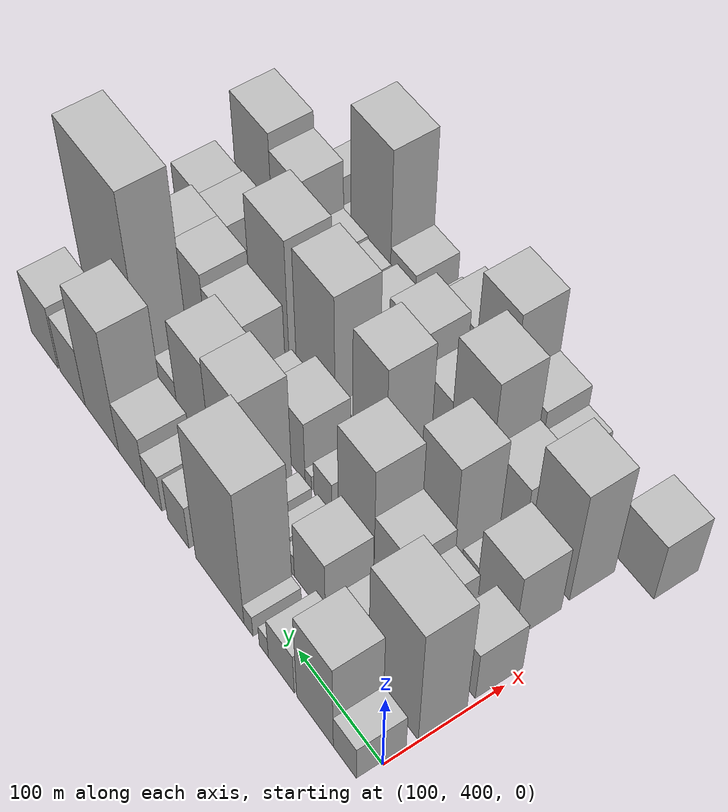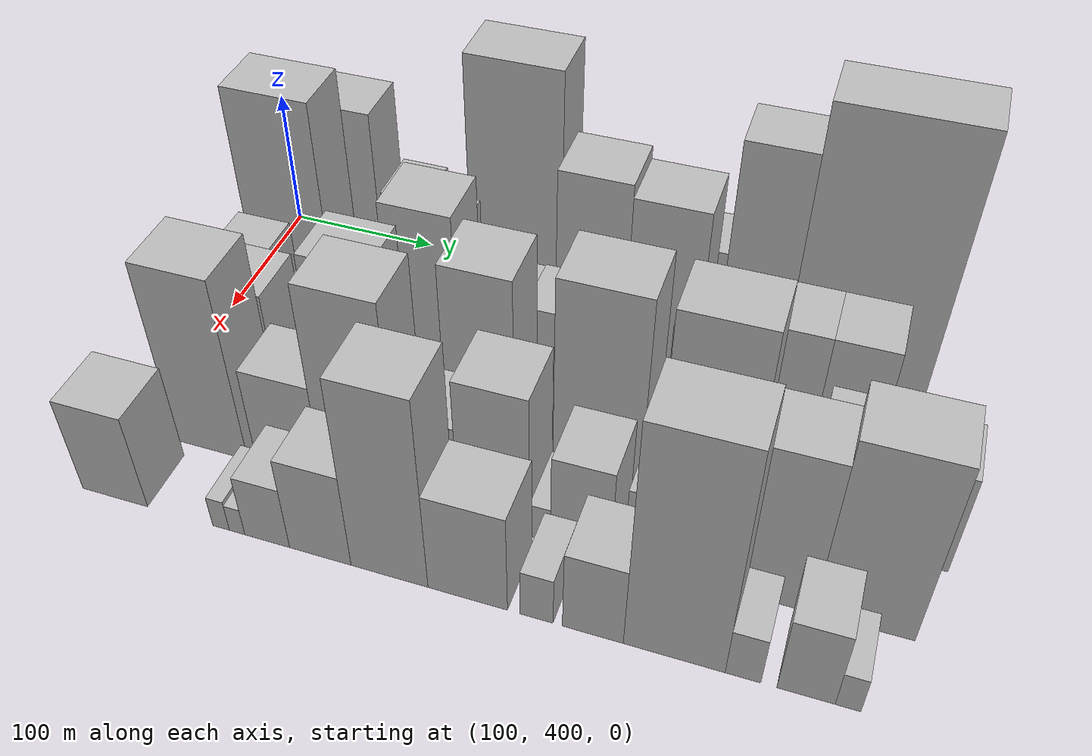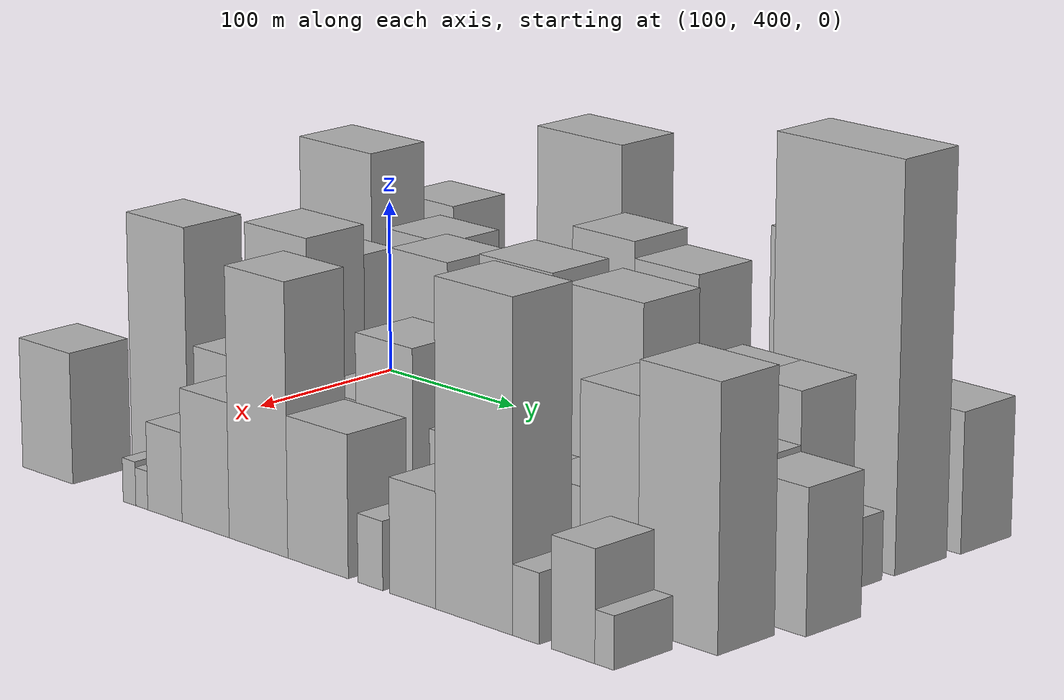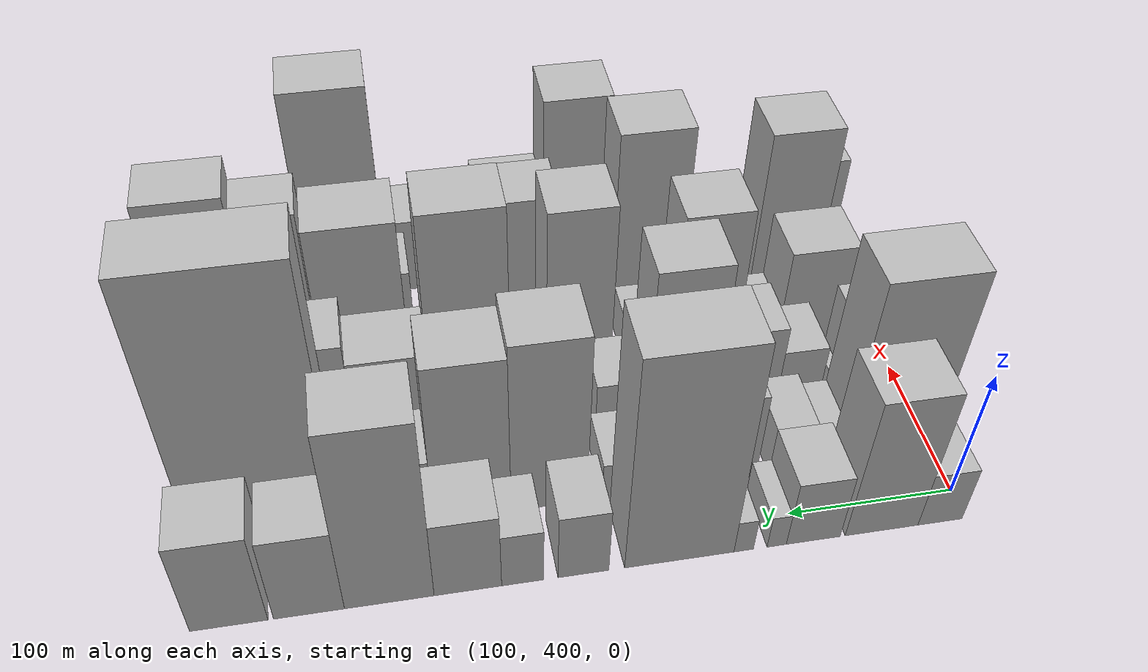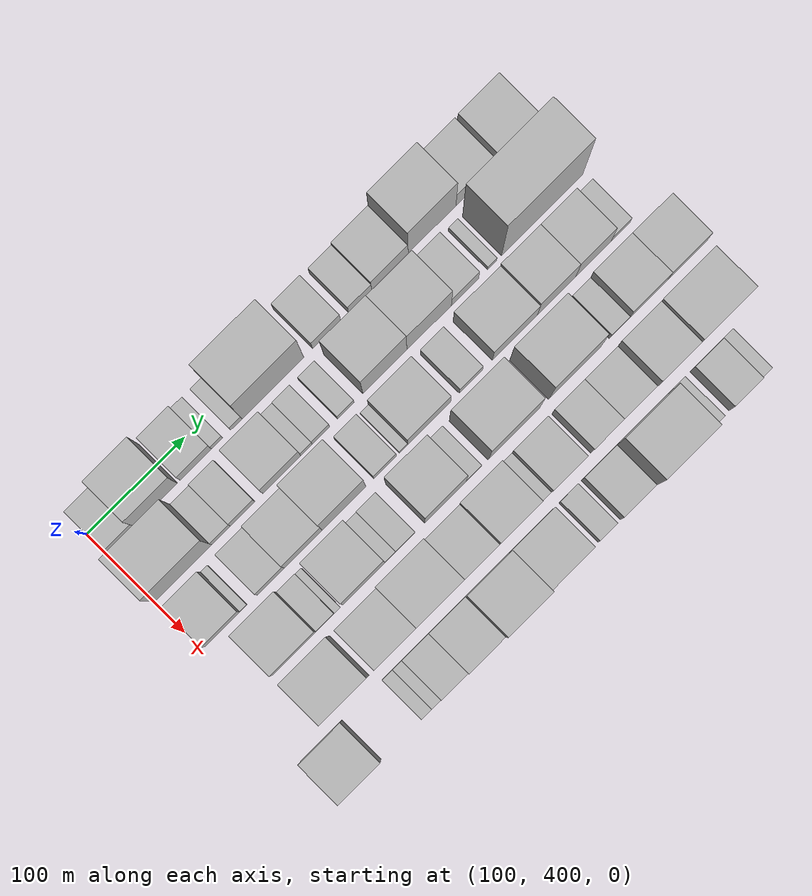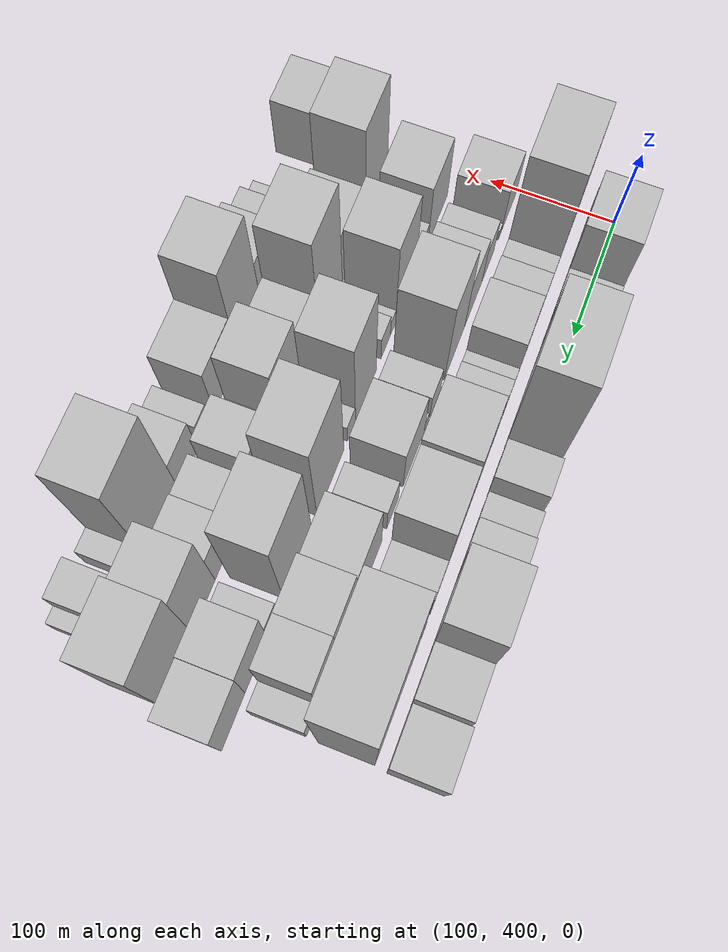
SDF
<sdf version="1.6">
 <world name="default">
  <model name="building_38">
   <static>1</static>
   <pose>100.0000 415.3462 0 0.000000 0.000000 0.000000</pose>
   <link name="link">
    <pose>0 0 22.50 0 0 0</pose>
    <collision name="collision"><geometry><box><size>40.0000 26.8681 45.0000</size></box></geometry></collision>
    <visual name="visual">
     <cast_shadows>0</cast_shadows>
     <geometry><box><size>40.0000 26.8681 45.0000</size></box></geometry>
     <material>
      <script>
       <uri>model://HANNAS_wall/materials/scripts</uri>
       <uri>model://HANNAS_wall/materials/textures</uri>
       <name>vrc/HANNAS_wall</name>
      </script>
     </material>
    </visual>
   </link>
  </model>
  <model name="building_39">
   <static>1</static>
   <pose>100.0000 450.6883 0 0.000000 0.000000 0.000000</pose>
   <link name="link">
    <pose>0 0 57.00 0 0 0</pose>
    <collision name="collision"><geometry><box><size>40.0000 43.8163 114.0000</size></box></geometry></collision>
    <visual name="visual">
     <cast_shadows>0</cast_shadows>
     <geometry><box><size>40.0000 43.8163 114.0000</size></box></geometry>
     <material>
      <script>
       <uri>model://HANNAS_wall/materials/scripts</uri>
       <uri>model://HANNAS_wall/materials/textures</uri>
       <name>vrc/HANNAS_wall</name>
      </script>
     </material>
    </visual>
   </link>
  </model>
  <model name="building_40">
   <static>1</static>
   <pose>100.0000 491.5645 0 0.000000 0.000000 0.000000</pose>
   <link name="link">
    <pose>0 0 27.00 0 0 0</pose>
    <collision name="collision"><geometry><box><size>40.0000 31.9362 54.0000</size></box></geometry></collision>
    <visual name="visual">
     <cast_shadows>0</cast_shadows>
     <geometry><box><size>40.0000 31.9362 54.0000</size></box></geometry>
     <material>
      <script>
       <uri>model://HANNAS_wall/materials/scripts</uri>
       <uri>model://HANNAS_wall/materials/textures</uri>
       <name>vrc/HANNAS_wall</name>
      </script>
     </material>
    </visual>
   </link>
  </model>
  <model name="building_41">
   <static>1</static>
   <pose>100.0000 513.2222 0 0.000000 0.000000 0.000000</pose>
   <link name="link">
    <pose>0 0 13.50 0 0 0</pose>
    <collision name="collision"><geometry><box><size>40.0000 11.3791 27.0000</size></box></geometry></collision>
    <visual name="visual">
     <cast_shadows>0</cast_shadows>
     <geometry><box><size>40.0000 11.3791 27.0000</size></box></geometry>
     <material>
      <script>
       <uri>model://HANNAS_wall/materials/scripts</uri>
       <uri>model://HANNAS_wall/materials/textures</uri>
       <name>vrc/HANNAS_wall</name>
      </script>
     </material>
    </visual>
   </link>
  </model>
  <model name="building_42">
   <static>1</static>
   <pose>100.0000 532.6210 0 0.000000 0.000000 0.000000</pose>
   <link name="link">
    <pose>0 0 13.50 0 0 0</pose>
    <collision name="collision"><geometry><box><size>40.0000 11.4184 27.0000</size></box></geometry></collision>
    <visual name="visual">
     <cast_shadows>0</cast_shadows>
     <geometry><box><size>40.0000 11.4184 27.0000</size></box></geometry>
     <material>
      <script>
       <uri>model://HANNAS_wall/materials/scripts</uri>
       <uri>model://HANNAS_wall/materials/textures</uri>
       <name>vrc/HANNAS_wall</name>
      </script>
     </material>
    </visual>
   </link>
  </model>
  <model name="building_43">
   <static>1</static>
   <pose>100.0000 569.9449 0 0.000000 0.000000 0.000000</pose>
   <link name="link">
    <pose>0 0 85.50 0 0 0</pose>
    <collision name="collision"><geometry><box><size>40.0000 63.2294 171.0000</size></box></geometry></collision>
    <visual name="visual">
     <cast_shadows>0</cast_shadows>
     <geometry><box><size>40.0000 63.2294 171.0000</size></box></geometry>
     <material>
      <script>
       <uri>model://HANNAS_wall/materials/scripts</uri>
       <uri>model://HANNAS_wall/materials/textures</uri>
       <name>vrc/HANNAS_wall</name>
      </script>
     </material>
    </visual>
   </link>
  </model>
  <model name="building_44">
   <static>1</static>
   <pose>100.0000 624.9713 0 0.000000 0.000000 0.000000</pose>
   <link name="link">
    <pose>0 0 27.00 0 0 0</pose>
    <collision name="collision"><geometry><box><size>40.0000 28.8236 54.0000</size></box></geometry></collision>
    <visual name="visual">
     <cast_shadows>0</cast_shadows>
     <geometry><box><size>40.0000 28.8236 54.0000</size></box></geometry>
     <material>
      <script>
       <uri>model://HANNAS_wall/materials/scripts</uri>
       <uri>model://HANNAS_wall/materials/textures</uri>
       <name>vrc/HANNAS_wall</name>
      </script>
     </material>
    </visual>
   </link>
  </model>
  <model name="building_45">
   <static>1</static>
   <pose>100.0000 659.1716 0 0.000000 0.000000 0.000000</pose>
   <link name="link">
    <pose>0 0 22.50 0 0 0</pose>
    <collision name="collision"><geometry><box><size>40.0000 23.5769 45.0000</size></box></geometry></collision>
    <visual name="visual">
     <cast_shadows>0</cast_shadows>
     <geometry><box><size>40.0000 23.5769 45.0000</size></box></geometry>
     <material>
      <script>
       <uri>model://HANNAS_wall/materials/scripts</uri>
       <uri>model://HANNAS_wall/materials/textures</uri>
       <name>vrc/HANNAS_wall</name>
      </script>
     </material>
    </visual>
   </link>
  </model>
  <model name="building_46">
   <static>1</static>
   <pose>100.0000 689.6804 0 0.000000 0.000000 0.000000</pose>
   <link name="link">
    <pose>0 0 31.50 0 0 0</pose>
    <collision name="collision"><geometry><box><size>40.0000 37.4409 63.0000</size></box></geometry></collision>
    <visual name="visual">
     <cast_shadows>0</cast_shadows>
     <geometry><box><size>40.0000 37.4409 63.0000</size></box></geometry>
     <material>
      <script>
       <uri>model://HANNAS_wall/materials/scripts</uri>
       <uri>model://HANNAS_wall/materials/textures</uri>
       <name>vrc/HANNAS_wall</name>
      </script>
     </material>
    </visual>
   </link>
  </model>
  <model name="building_47">
   <static>1</static>
   <pose>100.0000 732.8744 0 0.000000 0.000000 0.000000</pose>
   <link name="link">
    <pose>0 0 73.50 0 0 0</pose>
    <collision name="collision"><geometry><box><size>40.0000 48.9471 147.0000</size></box></geometry></collision>
    <visual name="visual">
     <cast_shadows>0</cast_shadows>
     <geometry><box><size>40.0000 48.9471 147.0000</size></box></geometry>
     <material>
      <script>
       <uri>model://HANNAS_wall/materials/scripts</uri>
       <uri>model://HANNAS_wall/materials/textures</uri>
       <name>vrc/HANNAS_wall</name>
      </script>
     </material>
    </visual>
   </link>
  </model>
  <model name="building_48">
   <static>1</static>
   <pose>100.0000 776.4161 0 0.000000 0.000000 0.000000</pose>
   <link name="link">
    <pose>0 0 34.50 0 0 0</pose>
    <collision name="collision"><geometry><box><size>40.0000 38.1363 69.0000</size></box></geometry></collision>
    <visual name="visual">
     <cast_shadows>0</cast_shadows>
     <geometry><box><size>40.0000 38.1363 69.0000</size></box></geometry>
     <material>
      <script>
       <uri>model://HANNAS_wall/materials/scripts</uri>
       <uri>model://HANNAS_wall/materials/textures</uri>
       <name>vrc/HANNAS_wall</name>
      </script>
     </material>
    </visual>
   </link>
  </model>
  <model name="building_49">
   <static>1</static>
   <pose>100.0000 819.2254 0 0.000000 0.000000 0.000000</pose>
   <link name="link">
    <pose>0 0 37.50 0 0 0</pose>
    <collision name="collision"><geometry><box><size>40.0000 41.4822 75.0000</size></box></geometry></collision>
    <visual name="visual">
     <cast_shadows>0</cast_shadows>
     <geometry><box><size>40.0000 41.4822 75.0000</size></box></geometry>
     <material>
      <script>
       <uri>model://HANNAS_wall/materials/scripts</uri>
       <uri>model://HANNAS_wall/materials/textures</uri>
       <name>vrc/HANNAS_wall</name>
      </script>
     </material>
    </visual>
   </link>
  </model>
  <model name="building_87">
   <static>1</static>
   <pose>149.0000 429.7727 0 0.000000 0.000000 0.000000</pose>
   <link name="link">
    <pose>0 0 75.00 0 0 0</pose>
    <collision name="collision"><geometry><box><size>40.0000 57.9336 150.0000</size></box></geometry></collision>
    <visual name="visual">
     <cast_shadows>0</cast_shadows>
     <geometry><box><size>40.0000 57.9336 150.0000</size></box></geometry>
     <material>
      <script>
       <uri>model://HANNAS_wall/materials/scripts</uri>
       <uri>model://HANNAS_wall/materials/textures</uri>
       <name>vrc/HANNAS_wall</name>
      </script>
     </material>
    </visual>
   </link>
  </model>
  <model name="building_88">
   <static>1</static>
   <pose>149.0000 468.2795 0 0.000000 0.000000 0.000000</pose>
   <link name="link">
    <pose>0 0 16.50 0 0 0</pose>
    <collision name="collision"><geometry><box><size>40.0000 19.0799 33.0000</size></box></geometry></collision>
    <visual name="visual">
     <cast_shadows>0</cast_shadows>
     <geometry><box><size>40.0000 19.0799 33.0000</size></box></geometry>
     <material>
      <script>
       <uri>model://HANNAS_wall/materials/scripts</uri>
       <uri>model://HANNAS_wall/materials/textures</uri>
       <name>vrc/HANNAS_wall</name>
      </script>
     </material>
    </visual>
   </link>
  </model>
  <model name="building_89">
   <static>1</static>
   <pose>149.0000 490.3723 0 0.000000 0.000000 0.000000</pose>
   <link name="link">
    <pose>0 0 21.00 0 0 0</pose>
    <collision name="collision"><geometry><box><size>40.0000 25.1057 42.0000</size></box></geometry></collision>
    <visual name="visual">
     <cast_shadows>0</cast_shadows>
     <geometry><box><size>40.0000 25.1057 42.0000</size></box></geometry>
     <material>
      <script>
       <uri>model://HANNAS_wall/materials/scripts</uri>
       <uri>model://HANNAS_wall/materials/textures</uri>
       <name>vrc/HANNAS_wall</name>
      </script>
     </material>
    </visual>
   </link>
  </model>
  <model name="building_90">
   <static>1</static>
   <pose>149.0000 530.3324 0 0.000000 0.000000 0.000000</pose>
   <link name="link">
    <pose>0 0 36.00 0 0 0</pose>
    <collision name="collision"><geometry><box><size>40.0000 38.8146 72.0000</size></box></geometry></collision>
    <visual name="visual">
     <cast_shadows>0</cast_shadows>
     <geometry><box><size>40.0000 38.8146 72.0000</size></box></geometry>
     <material>
      <script>
       <uri>model://HANNAS_wall/materials/scripts</uri>
       <uri>model://HANNAS_wall/materials/textures</uri>
       <name>vrc/HANNAS_wall</name>
      </script>
     </material>
    </visual>
   </link>
  </model>
  <model name="building_91">
   <static>1</static>
   <pose>149.0000 555.5555 0 0.000000 0.000000 0.000000</pose>
   <link name="link">
    <pose>0 0 13.50 0 0 0</pose>
    <collision name="collision"><geometry><box><size>40.0000 11.6316 27.0000</size></box></geometry></collision>
    <visual name="visual">
     <cast_shadows>0</cast_shadows>
     <geometry><box><size>40.0000 11.6316 27.0000</size></box></geometry>
     <material>
      <script>
       <uri>model://HANNAS_wall/materials/scripts</uri>
       <uri>model://HANNAS_wall/materials/textures</uri>
       <name>vrc/HANNAS_wall</name>
      </script>
     </material>
    </visual>
   </link>
  </model>
  <model name="building_92">
   <static>1</static>
   <pose>149.0000 570.3289 0 0.000000 0.000000 0.000000</pose>
   <link name="link">
    <pose>0 0 16.50 0 0 0</pose>
    <collision name="collision"><geometry><box><size>40.0000 17.9153 33.0000</size></box></geometry></collision>
    <visual name="visual">
     <cast_shadows>0</cast_shadows>
     <geometry><box><size>40.0000 17.9153 33.0000</size></box></geometry>
     <material>
      <script>
       <uri>model://HANNAS_wall/materials/scripts</uri>
       <uri>model://HANNAS_wall/materials/textures</uri>
       <name>vrc/HANNAS_wall</name>
      </script>
     </material>
    </visual>
   </link>
  </model>
  <model name="building_93">
   <static>1</static>
   <pose>149.0000 595.7340 0 0.000000 0.000000 0.000000</pose>
   <link name="link">
    <pose>0 0 15.00 0 0 0</pose>
    <collision name="collision"><geometry><box><size>40.0000 16.8949 30.0000</size></box></geometry></collision>
    <visual name="visual">
     <cast_shadows>0</cast_shadows>
     <geometry><box><size>40.0000 16.8949 30.0000</size></box></geometry>
     <material>
      <script>
       <uri>model://HANNAS_wall/materials/scripts</uri>
       <uri>model://HANNAS_wall/materials/textures</uri>
       <name>vrc/HANNAS_wall</name>
      </script>
     </material>
    </visual>
   </link>
  </model>
  <model name="building_94">
   <static>1</static>
   <pose>149.0000 635.6254 0 0.000000 0.000000 0.000000</pose>
   <link name="link">
    <pose>0 0 69.00 0 0 0</pose>
    <collision name="collision"><geometry><box><size>40.0000 44.8880 138.0000</size></box></geometry></collision>
    <visual name="visual">
     <cast_shadows>0</cast_shadows>
     <geometry><box><size>40.0000 44.8880 138.0000</size></box></geometry>
     <material>
      <script>
       <uri>model://HANNAS_wall/materials/scripts</uri>
       <uri>model://HANNAS_wall/materials/textures</uri>
       <name>vrc/HANNAS_wall</name>
      </script>
     </material>
    </visual>
   </link>
  </model>
  <model name="building_95">
   <static>1</static>
   <pose>149.0000 680.8346 0 0.000000 0.000000 0.000000</pose>
   <link name="link">
    <pose>0 0 64.50 0 0 0</pose>
    <collision name="collision"><geometry><box><size>40.0000 45.5304 129.0000</size></box></geometry></collision>
    <visual name="visual">
     <cast_shadows>0</cast_shadows>
     <geometry><box><size>40.0000 45.5304 129.0000</size></box></geometry>
     <material>
      <script>
       <uri>model://HANNAS_wall/materials/scripts</uri>
       <uri>model://HANNAS_wall/materials/textures</uri>
       <name>vrc/HANNAS_wall</name>
      </script>
     </material>
    </visual>
   </link>
  </model>
  <model name="building_96">
   <static>1</static>
   <pose>149.0000 717.6241 0 0.000000 0.000000 0.000000</pose>
   <link name="link">
    <pose>0 0 27.00 0 0 0</pose>
    <collision name="collision"><geometry><box><size>40.0000 28.0486 54.0000</size></box></geometry></collision>
    <visual name="visual">
     <cast_shadows>0</cast_shadows>
     <geometry><box><size>40.0000 28.0486 54.0000</size></box></geometry>
     <material>
      <script>
       <uri>model://HANNAS_wall/materials/scripts</uri>
       <uri>model://HANNAS_wall/materials/textures</uri>
       <name>vrc/HANNAS_wall</name>
      </script>
     </material>
    </visual>
   </link>
  </model>
  <model name="building_97">
   <static>1</static>
   <pose>149.0000 745.3491 0 0.000000 0.000000 0.000000</pose>
   <link name="link">
    <pose>0 0 10.50 0 0 0</pose>
    <collision name="collision"><geometry><box><size>40.0000 9.4014 21.0000</size></box></geometry></collision>
    <visual name="visual">
     <cast_shadows>0</cast_shadows>
     <geometry><box><size>40.0000 9.4014 21.0000</size></box></geometry>
     <material>
      <script>
       <uri>model://HANNAS_wall/materials/scripts</uri>
       <uri>model://HANNAS_wall/materials/textures</uri>
       <name>vrc/HANNAS_wall</name>
      </script>
     </material>
    </visual>
   </link>
  </model>
  <model name="building_98">
   <static>1</static>
   <pose>149.0000 796.6585 0 0.000000 0.000000 0.000000</pose>
   <link name="link">
    <pose>0 0 106.50 0 0 0</pose>
    <collision name="collision"><geometry><box><size>40.0000 83.2174 213.0000</size></box></geometry></collision>
    <visual name="visual">
     <cast_shadows>0</cast_shadows>
     <geometry><box><size>40.0000 83.2174 213.0000</size></box></geometry>
     <material>
      <script>
       <uri>model://HANNAS_wall/materials/scripts</uri>
       <uri>model://HANNAS_wall/materials/textures</uri>
       <name>vrc/HANNAS_wall</name>
      </script>
     </material>
    </visual>
   </link>
  </model>
  <model name="building_136">
   <static>1</static>
   <pose>198.0000 421.5181 0 0.000000 0.000000 0.000000</pose>
   <link name="link">
    <pose>0 0 31.50 0 0 0</pose>
    <collision name="collision"><geometry><box><size>40.0000 35.6920 63.0000</size></box></geometry></collision>
    <visual name="visual">
     <cast_shadows>0</cast_shadows>
     <geometry><box><size>40.0000 35.6920 63.0000</size></box></geometry>
     <material>
      <script>
       <uri>model://HANNAS_wall/materials/scripts</uri>
       <uri>model://HANNAS_wall/materials/textures</uri>
       <name>vrc/HANNAS_wall</name>
      </script>
     </material>
    </visual>
   </link>
  </model>
  <model name="building_137">
   <static>1</static>
   <pose>198.0000 442.8236 0 0.000000 0.000000 0.000000</pose>
   <link name="link">
    <pose>0 0 7.50 0 0 0</pose>
    <collision name="collision"><geometry><box><size>40.0000 6.9190 15.0000</size></box></geometry></collision>
    <visual name="visual">
     <cast_shadows>0</cast_shadows>
     <geometry><box><size>40.0000 6.9190 15.0000</size></box></geometry>
     <material>
      <script>
       <uri>model://HANNAS_wall/materials/scripts</uri>
       <uri>model://HANNAS_wall/materials/textures</uri>
       <name>vrc/HANNAS_wall</name>
      </script>
     </material>
    </visual>
   </link>
  </model>
  <model name="building_138">
   <static>1</static>
   <pose>198.0000 470.1542 0 0.000000 0.000000 0.000000</pose>
   <link name="link">
    <pose>0 0 25.50 0 0 0</pose>
    <collision name="collision"><geometry><box><size>40.0000 27.7422 51.0000</size></box></geometry></collision>
    <visual name="visual">
     <cast_shadows>0</cast_shadows>
     <geometry><box><size>40.0000 27.7422 51.0000</size></box></geometry>
     <material>
      <script>
       <uri>model://HANNAS_wall/materials/scripts</uri>
       <uri>model://HANNAS_wall/materials/textures</uri>
       <name>vrc/HANNAS_wall</name>
      </script>
     </material>
    </visual>
   </link>
  </model>
  <model name="building_139">
   <static>1</static>
   <pose>198.0000 503.3823 0 0.000000 0.000000 0.000000</pose>
   <link name="link">
    <pose>0 0 36.00 0 0 0</pose>
    <collision name="collision"><geometry><box><size>40.0000 38.7141 72.0000</size></box></geometry></collision>
    <visual name="visual">
     <cast_shadows>0</cast_shadows>
     <geometry><box><size>40.0000 38.7141 72.0000</size></box></geometry>
     <material>
      <script>
       <uri>model://HANNAS_wall/materials/scripts</uri>
       <uri>model://HANNAS_wall/materials/textures</uri>
       <name>vrc/HANNAS_wall</name>
      </script>
     </material>
    </visual>
   </link>
  </model>
  <model name="building_140">
   <static>1</static>
   <pose>198.0000 544.9602 0 0.000000 0.000000 0.000000</pose>
   <link name="link">
    <pose>0 0 64.50 0 0 0</pose>
    <collision name="collision"><geometry><box><size>40.0000 44.4418 129.0000</size></box></geometry></collision>
    <visual name="visual">
     <cast_shadows>0</cast_shadows>
     <geometry><box><size>40.0000 44.4418 129.0000</size></box></geometry>
     <material>
      <script>
       <uri>model://HANNAS_wall/materials/scripts</uri>
       <uri>model://HANNAS_wall/materials/textures</uri>
       <name>vrc/HANNAS_wall</name>
      </script>
     </material>
    </visual>
   </link>
  </model>
  <model name="building_141">
   <static>1</static>
   <pose>198.0000 586.7877 0 0.000000 0.000000 0.000000</pose>
   <link name="link">
    <pose>0 0 21.00 0 0 0</pose>
    <collision name="collision"><geometry><box><size>40.0000 23.2132 42.0000</size></box></geometry></collision>
    <visual name="visual">
     <cast_shadows>0</cast_shadows>
     <geometry><box><size>40.0000 23.2132 42.0000</size></box></geometry>
     <material>
      <script>
       <uri>model://HANNAS_wall/materials/scripts</uri>
       <uri>model://HANNAS_wall/materials/textures</uri>
       <name>vrc/HANNAS_wall</name>
      </script>
     </material>
    </visual>
   </link>
  </model>
  <model name="building_142">
   <static>1</static>
   <pose>198.0000 605.6470 0 0.000000 0.000000 0.000000</pose>
   <link name="link">
    <pose>0 0 9.00 0 0 0</pose>
    <collision name="collision"><geometry><box><size>40.0000 8.5053 18.0000</size></box></geometry></collision>
    <visual name="visual">
     <cast_shadows>0</cast_shadows>
     <geometry><box><size>40.0000 8.5053 18.0000</size></box></geometry>
     <material>
      <script>
       <uri>model://HANNAS_wall/materials/scripts</uri>
       <uri>model://HANNAS_wall/materials/textures</uri>
       <name>vrc/HANNAS_wall</name>
      </script>
     </material>
    </visual>
   </link>
  </model>
  <model name="building_143">
   <static>1</static>
   <pose>198.0000 631.8712 0 0.000000 0.000000 0.000000</pose>
   <link name="link">
    <pose>0 0 37.50 0 0 0</pose>
    <collision name="collision"><geometry><box><size>40.0000 43.9432 75.0000</size></box></geometry></collision>
    <visual name="visual">
     <cast_shadows>0</cast_shadows>
     <geometry><box><size>40.0000 43.9432 75.0000</size></box></geometry>
     <material>
      <script>
       <uri>model://HANNAS_wall/materials/scripts</uri>
       <uri>model://HANNAS_wall/materials/textures</uri>
       <name>vrc/HANNAS_wall</name>
      </script>
     </material>
    </visual>
   </link>
  </model>
  <model name="building_144">
   <static>1</static>
   <pose>198.0000 674.6331 0 0.000000 0.000000 0.000000</pose>
   <link name="link">
    <pose>0 0 22.50 0 0 0</pose>
    <collision name="collision"><geometry><box><size>40.0000 23.5806 45.0000</size></box></geometry></collision>
    <visual name="visual">
     <cast_shadows>0</cast_shadows>
     <geometry><box><size>40.0000 23.5806 45.0000</size></box></geometry>
     <material>
      <script>
       <uri>model://HANNAS_wall/materials/scripts</uri>
       <uri>model://HANNAS_wall/materials/textures</uri>
       <name>vrc/HANNAS_wall</name>
      </script>
     </material>
    </visual>
   </link>
  </model>
  <model name="building_145">
   <static>1</static>
   <pose>198.0000 719.4509 0 0.000000 0.000000 0.000000</pose>
   <link name="link">
    <pose>0 0 43.50 0 0 0</pose>
    <collision name="collision"><geometry><box><size>40.0000 46.0550 87.0000</size></box></geometry></collision>
    <visual name="visual">
     <cast_shadows>0</cast_shadows>
     <geometry><box><size>40.0000 46.0550 87.0000</size></box></geometry>
     <material>
      <script>
       <uri>model://HANNAS_wall/materials/scripts</uri>
       <uri>model://HANNAS_wall/materials/textures</uri>
       <name>vrc/HANNAS_wall</name>
      </script>
     </material>
    </visual>
   </link>
  </model>
  <model name="building_146">
   <static>1</static>
   <pose>198.0000 762.1420 0 0.000000 0.000000 0.000000</pose>
   <link name="link">
    <pose>0 0 51.00 0 0 0</pose>
    <collision name="collision"><geometry><box><size>40.0000 39.3271 102.0000</size></box></geometry></collision>
    <visual name="visual">
     <cast_shadows>0</cast_shadows>
     <geometry><box><size>40.0000 39.3271 102.0000</size></box></geometry>
     <material>
      <script>
       <uri>model://HANNAS_wall/materials/scripts</uri>
       <uri>model://HANNAS_wall/materials/textures</uri>
       <name>vrc/HANNAS_wall</name>
      </script>
     </material>
    </visual>
   </link>
  </model>
  <model name="building_147">
   <static>1</static>
   <pose>198.0000 799.7771 0 0.000000 0.000000 0.000000</pose>
   <link name="link">
    <pose>0 0 51.00 0 0 0</pose>
    <collision name="collision"><geometry><box><size>40.0000 35.9431 102.0000</size></box></geometry></collision>
    <visual name="visual">
     <cast_shadows>0</cast_shadows>
     <geometry><box><size>40.0000 35.9431 102.0000</size></box></geometry>
     <material>
      <script>
       <uri>model://HANNAS_wall/materials/scripts</uri>
       <uri>model://HANNAS_wall/materials/textures</uri>
       <name>vrc/HANNAS_wall</name>
      </script>
     </material>
    </visual>
   </link>
  </model>
  <model name="building_148">
   <static>1</static>
   <pose>198.0000 827.6706 0 0.000000 0.000000 0.000000</pose>
   <link name="link">
    <pose>0 0 18.00 0 0 0</pose>
    <collision name="collision"><geometry><box><size>40.0000 19.8439 36.0000</size></box></geometry></collision>
    <visual name="visual">
     <cast_shadows>0</cast_shadows>
     <geometry><box><size>40.0000 19.8439 36.0000</size></box></geometry>
     <material>
      <script>
       <uri>model://HANNAS_wall/materials/scripts</uri>
       <uri>model://HANNAS_wall/materials/textures</uri>
       <name>vrc/HANNAS_wall</name>
      </script>
     </material>
    </visual>
   </link>
  </model>
  <model name="building_183">
   <static>1</static>
   <pose>247.0000 446.1159 0 0.000000 0.000000 0.000000</pose>
   <link name="link">
    <pose>0 0 42.00 0 0 0</pose>
    <collision name="collision"><geometry><box><size>40.0000 44.1272 84.0000</size></box></geometry></collision>
    <visual name="visual">
     <cast_shadows>0</cast_shadows>
     <geometry><box><size>40.0000 44.1272 84.0000</size></box></geometry>
     <material>
      <script>
       <uri>model://HANNAS_wall/materials/scripts</uri>
       <uri>model://HANNAS_wall/materials/textures</uri>
       <name>vrc/HANNAS_wall</name>
      </script>
     </material>
    </visual>
   </link>
  </model>
  <model name="building_184">
   <static>1</static>
   <pose>247.0000 477.4141 0 0.000000 0.000000 0.000000</pose>
   <link name="link">
    <pose>0 0 16.50 0 0 0</pose>
    <collision name="collision"><geometry><box><size>40.0000 18.4692 33.0000</size></box></geometry></collision>
    <visual name="visual">
     <cast_shadows>0</cast_shadows>
     <geometry><box><size>40.0000 18.4692 33.0000</size></box></geometry>
     <material>
      <script>
       <uri>model://HANNAS_wall/materials/scripts</uri>
       <uri>model://HANNAS_wall/materials/textures</uri>
       <name>vrc/HANNAS_wall</name>
      </script>
     </material>
    </visual>
   </link>
  </model>
  <model name="building_185">
   <static>1</static>
   <pose>247.0000 489.6516 0 0.000000 0.000000 0.000000</pose>
   <link name="link">
    <pose>0 0 7.50 0 0 0</pose>
    <collision name="collision"><geometry><box><size>40.0000 6.0059 15.0000</size></box></geometry></collision>
    <visual name="visual">
     <cast_shadows>0</cast_shadows>
     <geometry><box><size>40.0000 6.0059 15.0000</size></box></geometry>
     <material>
      <script>
       <uri>model://HANNAS_wall/materials/scripts</uri>
       <uri>model://HANNAS_wall/materials/textures</uri>
       <name>vrc/HANNAS_wall</name>
      </script>
     </material>
    </visual>
   </link>
  </model>
  <model name="building_186">
   <static>1</static>
   <pose>247.0000 516.8333 0 0.000000 0.000000 0.000000</pose>
   <link name="link">
    <pose>0 0 61.50 0 0 0</pose>
    <collision name="collision"><geometry><box><size>40.0000 42.3575 123.0000</size></box></geometry></collision>
    <visual name="visual">
     <cast_shadows>0</cast_shadows>
     <geometry><box><size>40.0000 42.3575 123.0000</size></box></geometry>
     <material>
      <script>
       <uri>model://HANNAS_wall/materials/scripts</uri>
       <uri>model://HANNAS_wall/materials/textures</uri>
       <name>vrc/HANNAS_wall</name>
      </script>
     </material>
    </visual>
   </link>
  </model>
  <model name="building_187">
   <static>1</static>
   <pose>247.0000 543.4096 0 0.000000 0.000000 0.000000</pose>
   <link name="link">
    <pose>0 0 12.00 0 0 0</pose>
    <collision name="collision"><geometry><box><size>40.0000 10.7951 24.0000</size></box></geometry></collision>
    <visual name="visual">
     <cast_shadows>0</cast_shadows>
     <geometry><box><size>40.0000 10.7951 24.0000</size></box></geometry>
     <material>
      <script>
       <uri>model://HANNAS_wall/materials/scripts</uri>
       <uri>model://HANNAS_wall/materials/textures</uri>
       <name>vrc/HANNAS_wall</name>
      </script>
     </material>
    </visual>
   </link>
  </model>
  <model name="building_188">
   <static>1</static>
   <pose>247.0000 558.6547 0 0.000000 0.000000 0.000000</pose>
   <link name="link">
    <pose>0 0 18.00 0 0 0</pose>
    <collision name="collision"><geometry><box><size>40.0000 19.6952 36.0000</size></box></geometry></collision>
    <visual name="visual">
     <cast_shadows>0</cast_shadows>
     <geometry><box><size>40.0000 19.6952 36.0000</size></box></geometry>
     <material>
      <script>
       <uri>model://HANNAS_wall/materials/scripts</uri>
       <uri>model://HANNAS_wall/materials/textures</uri>
       <name>vrc/HANNAS_wall</name>
      </script>
     </material>
    </visual>
   </link>
  </model>
  <model name="building_189">
   <static>1</static>
   <pose>247.0000 599.4582 0 0.000000 0.000000 0.000000</pose>
   <link name="link">
    <pose>0 0 69.00 0 0 0</pose>
    <collision name="collision"><geometry><box><size>40.0000 41.9118 138.0000</size></box></geometry></collision>
    <visual name="visual">
     <cast_shadows>0</cast_shadows>
     <geometry><box><size>40.0000 41.9118 138.0000</size></box></geometry>
     <material>
      <script>
       <uri>model://HANNAS_wall/materials/scripts</uri>
       <uri>model://HANNAS_wall/materials/textures</uri>
       <name>vrc/HANNAS_wall</name>
      </script>
     </material>
    </visual>
   </link>
  </model>
  <model name="building_190">
   <static>1</static>
   <pose>247.0000 628.4117 0 0.000000 0.000000 0.000000</pose>
   <link name="link">
    <pose>0 0 15.00 0 0 0</pose>
    <collision name="collision"><geometry><box><size>40.0000 15.9952 30.0000</size></box></geometry></collision>
    <visual name="visual">
     <cast_shadows>0</cast_shadows>
     <geometry><box><size>40.0000 15.9952 30.0000</size></box></geometry>
     <material>
      <script>
       <uri>model://HANNAS_wall/materials/scripts</uri>
       <uri>model://HANNAS_wall/materials/textures</uri>
       <name>vrc/HANNAS_wall</name>
      </script>
     </material>
    </visual>
   </link>
  </model>
  <model name="building_191">
   <static>1</static>
   <pose>247.0000 669.3596 0 0.000000 0.000000 0.000000</pose>
   <link name="link">
    <pose>0 0 73.50 0 0 0</pose>
    <collision name="collision"><geometry><box><size>40.0000 51.9005 147.0000</size></box></geometry></collision>
    <visual name="visual">
     <cast_shadows>0</cast_shadows>
     <geometry><box><size>40.0000 51.9005 147.0000</size></box></geometry>
     <material>
      <script>
       <uri>model://HANNAS_wall/materials/scripts</uri>
       <uri>model://HANNAS_wall/materials/textures</uri>
       <name>vrc/HANNAS_wall</name>
      </script>
     </material>
    </visual>
   </link>
  </model>
  <model name="building_192">
   <static>1</static>
   <pose>247.0000 731.5121 0 0.000000 0.000000 0.000000</pose>
   <link name="link">
    <pose>0 0 72.00 0 0 0</pose>
    <collision name="collision"><geometry><box><size>40.0000 52.4046 144.0000</size></box></geometry></collision>
    <visual name="visual">
     <cast_shadows>0</cast_shadows>
     <geometry><box><size>40.0000 52.4046 144.0000</size></box></geometry>
     <material>
      <script>
       <uri>model://HANNAS_wall/materials/scripts</uri>
       <uri>model://HANNAS_wall/materials/textures</uri>
       <name>vrc/HANNAS_wall</name>
      </script>
     </material>
    </visual>
   </link>
  </model>
  <model name="building_193">
   <static>1</static>
   <pose>247.0000 777.0701 0 0.000000 0.000000 0.000000</pose>
   <link name="link">
    <pose>0 0 18.00 0 0 0</pose>
    <collision name="collision"><geometry><box><size>40.0000 18.7113 36.0000</size></box></geometry></collision>
    <visual name="visual">
     <cast_shadows>0</cast_shadows>
     <geometry><box><size>40.0000 18.7113 36.0000</size></box></geometry>
     <material>
      <script>
       <uri>model://HANNAS_wall/materials/scripts</uri>
       <uri>model://HANNAS_wall/materials/textures</uri>
       <name>vrc/HANNAS_wall</name>
      </script>
     </material>
    </visual>
   </link>
  </model>
  <model name="building_194">
   <static>1</static>
   <pose>247.0000 806.0988 0 0.000000 0.000000 0.000000</pose>
   <link name="link">
    <pose>0 0 39.00 0 0 0</pose>
    <collision name="collision"><geometry><box><size>40.0000 39.3462 78.0000</size></box></geometry></collision>
    <visual name="visual">
     <cast_shadows>0</cast_shadows>
     <geometry><box><size>40.0000 39.3462 78.0000</size></box></geometry>
     <material>
      <script>
       <uri>model://HANNAS_wall/materials/scripts</uri>
       <uri>model://HANNAS_wall/materials/textures</uri>
       <name>vrc/HANNAS_wall</name>
      </script>
     </material>
    </visual>
   </link>
  </model>
  <model name="building_195">
   <static>1</static>
   <pose>247.0000 846.0112 0 0.000000 0.000000 0.000000</pose>
   <link name="link">
    <pose>0 0 37.50 0 0 0</pose>
    <collision name="collision"><geometry><box><size>40.0000 40.4786 75.0000</size></box></geometry></collision>
    <visual name="visual">
     <cast_shadows>0</cast_shadows>
     <geometry><box><size>40.0000 40.4786 75.0000</size></box></geometry>
     <material>
      <script>
       <uri>model://HANNAS_wall/materials/scripts</uri>
       <uri>model://HANNAS_wall/materials/textures</uri>
       <name>vrc/HANNAS_wall</name>
      </script>
     </material>
    </visual>
   </link>
  </model>
  <model name="building_234">
   <static>1</static>
   <pose>296.0000 449.4998 0 0.000000 0.000000 0.000000</pose>
   <link name="link">
    <pose>0 0 69.00 0 0 0</pose>
    <collision name="collision"><geometry><box><size>40.0000 46.4238 138.0000</size></box></geometry></collision>
    <visual name="visual">
     <cast_shadows>0</cast_shadows>
     <geometry><box><size>40.0000 46.4238 138.0000</size></box></geometry>
     <material>
      <script>
       <uri>model://HANNAS_wall/materials/scripts</uri>
       <uri>model://HANNAS_wall/materials/textures</uri>
       <name>vrc/HANNAS_wall</name>
      </script>
     </material>
    </visual>
   </link>
  </model>
  <model name="building_235">
   <static>1</static>
   <pose>296.0000 499.8587 0 0.000000 0.000000 0.000000</pose>
   <link name="link">
    <pose>0 0 37.50 0 0 0</pose>
    <collision name="collision"><geometry><box><size>40.0000 42.2941 75.0000</size></box></geometry></collision>
    <visual name="visual">
     <cast_shadows>0</cast_shadows>
     <geometry><box><size>40.0000 42.2941 75.0000</size></box></geometry>
     <material>
      <script>
       <uri>model://HANNAS_wall/materials/scripts</uri>
       <uri>model://HANNAS_wall/materials/textures</uri>
       <name>vrc/HANNAS_wall</name>
      </script>
     </material>
    </visual>
   </link>
  </model>
  <model name="building_236">
   <static>1</static>
   <pose>296.0000 544.4597 0 0.000000 0.000000 0.000000</pose>
   <link name="link">
    <pose>0 0 75.00 0 0 0</pose>
    <collision name="collision"><geometry><box><size>40.0000 46.9078 150.0000</size></box></geometry></collision>
    <visual name="visual">
     <cast_shadows>0</cast_shadows>
     <geometry><box><size>40.0000 46.9078 150.0000</size></box></geometry>
     <material>
      <script>
       <uri>model://HANNAS_wall/materials/scripts</uri>
       <uri>model://HANNAS_wall/materials/textures</uri>
       <name>vrc/HANNAS_wall</name>
      </script>
     </material>
    </visual>
   </link>
  </model>
  <model name="building_237">
   <static>1</static>
   <pose>296.0000 586.0030 0 0.000000 0.000000 0.000000</pose>
   <link name="link">
    <pose>0 0 36.00 0 0 0</pose>
    <collision name="collision"><geometry><box><size>40.0000 36.1788 72.0000</size></box></geometry></collision>
    <visual name="visual">
     <cast_shadows>0</cast_shadows>
     <geometry><box><size>40.0000 36.1788 72.0000</size></box></geometry>
     <material>
      <script>
       <uri>model://HANNAS_wall/materials/scripts</uri>
       <uri>model://HANNAS_wall/materials/textures</uri>
       <name>vrc/HANNAS_wall</name>
      </script>
     </material>
    </visual>
   </link>
  </model>
  <model name="building_238">
   <static>1</static>
   <pose>296.0000 624.9293 0 0.000000 0.000000 0.000000</pose>
   <link name="link">
    <pose>0 0 54.00 0 0 0</pose>
    <collision name="collision"><geometry><box><size>40.0000 41.6739 108.0000</size></box></geometry></collision>
    <visual name="visual">
     <cast_shadows>0</cast_shadows>
     <geometry><box><size>40.0000 41.6739 108.0000</size></box></geometry>
     <material>
      <script>
       <uri>model://HANNAS_wall/materials/scripts</uri>
       <uri>model://HANNAS_wall/materials/textures</uri>
       <name>vrc/HANNAS_wall</name>
      </script>
     </material>
    </visual>
   </link>
  </model>
  <model name="building_239">
   <static>1</static>
   <pose>296.0000 651.8241 0 0.000000 0.000000 0.000000</pose>
   <link name="link">
    <pose>0 0 13.50 0 0 0</pose>
    <collision name="collision"><geometry><box><size>40.0000 12.1158 27.0000</size></box></geometry></collision>
    <visual name="visual">
     <cast_shadows>0</cast_shadows>
     <geometry><box><size>40.0000 12.1158 27.0000</size></box></geometry>
     <material>
      <script>
       <uri>model://HANNAS_wall/materials/scripts</uri>
       <uri>model://HANNAS_wall/materials/textures</uri>
       <name>vrc/HANNAS_wall</name>
      </script>
     </material>
    </visual>
   </link>
  </model>
  <model name="building_240">
   <static>1</static>
   <pose>296.0000 675.2045 0 0.000000 0.000000 0.000000</pose>
   <link name="link">
    <pose>0 0 34.50 0 0 0</pose>
    <collision name="collision"><geometry><box><size>40.0000 34.6450 69.0000</size></box></geometry></collision>
    <visual name="visual">
     <cast_shadows>0</cast_shadows>
     <geometry><box><size>40.0000 34.6450 69.0000</size></box></geometry>
     <material>
      <script>
       <uri>model://HANNAS_wall/materials/scripts</uri>
       <uri>model://HANNAS_wall/materials/textures</uri>
       <name>vrc/HANNAS_wall</name>
      </script>
     </material>
    </visual>
   </link>
  </model>
  <model name="building_241">
   <static>1</static>
   <pose>296.0000 714.6618 0 0.000000 0.000000 0.000000</pose>
   <link name="link">
    <pose>0 0 30.00 0 0 0</pose>
    <collision name="collision"><geometry><box><size>40.0000 30.2697 60.0000</size></box></geometry></collision>
    <visual name="visual">
     <cast_shadows>0</cast_shadows>
     <geometry><box><size>40.0000 30.2697 60.0000</size></box></geometry>
     <material>
      <script>
       <uri>model://HANNAS_wall/materials/scripts</uri>
       <uri>model://HANNAS_wall/materials/textures</uri>
       <name>vrc/HANNAS_wall</name>
      </script>
     </material>
    </visual>
   </link>
  </model>
  <model name="building_242">
   <static>1</static>
   <pose>296.0000 746.3354 0 0.000000 0.000000 0.000000</pose>
   <link name="link">
    <pose>0 0 31.50 0 0 0</pose>
    <collision name="collision"><geometry><box><size>40.0000 33.0776 63.0000</size></box></geometry></collision>
    <visual name="visual">
     <cast_shadows>0</cast_shadows>
     <geometry><box><size>40.0000 33.0776 63.0000</size></box></geometry>
     <material>
      <script>
       <uri>model://HANNAS_wall/materials/scripts</uri>
       <uri>model://HANNAS_wall/materials/textures</uri>
       <name>vrc/HANNAS_wall</name>
      </script>
     </material>
    </visual>
   </link>
  </model>
  <model name="building_243">
   <static>1</static>
   <pose>296.0000 782.4133 0 0.000000 0.000000 0.000000</pose>
   <link name="link">
    <pose>0 0 58.50 0 0 0</pose>
    <collision name="collision"><geometry><box><size>40.0000 39.0781 117.0000</size></box></geometry></collision>
    <visual name="visual">
     <cast_shadows>0</cast_shadows>
     <geometry><box><size>40.0000 39.0781 117.0000</size></box></geometry>
     <material>
      <script>
       <uri>model://HANNAS_wall/materials/scripts</uri>
       <uri>model://HANNAS_wall/materials/textures</uri>
       <name>vrc/HANNAS_wall</name>
      </script>
     </material>
    </visual>
   </link>
  </model>
  <model name="building_244">
   <static>1</static>
   <pose>296.0000 828.0343 0 0.000000 0.000000 0.000000</pose>
   <link name="link">
    <pose>0 0 67.50 0 0 0</pose>
    <collision name="collision"><geometry><box><size>40.0000 52.1640 135.0000</size></box></geometry></collision>
    <visual name="visual">
     <cast_shadows>0</cast_shadows>
     <geometry><box><size>40.0000 52.1640 135.0000</size></box></geometry>
     <material>
      <script>
       <uri>model://HANNAS_wall/materials/scripts</uri>
       <uri>model://HANNAS_wall/materials/textures</uri>
       <name>vrc/HANNAS_wall</name>
      </script>
     </material>
    </visual>
   </link>
  </model>
  <model name="building_282">
   <static>1</static>
   <pose>345.0000 414.9305 0 0.000000 0.000000 0.000000</pose>
   <link name="link">
    <pose>0 0 36.00 0 0 0</pose>
    <collision name="collision"><geometry><box><size>40.0000 41.9985 72.0000</size></box></geometry></collision>
    <visual name="visual">
     <cast_shadows>0</cast_shadows>
     <geometry><box><size>40.0000 41.9985 72.0000</size></box></geometry>
     <material>
      <script>
       <uri>model://HANNAS_wall/materials/scripts</uri>
       <uri>model://HANNAS_wall/materials/textures</uri>
       <name>vrc/HANNAS_wall</name>
      </script>
     </material>
    </visual>
   </link>
  </model>
  <model name="building_283">
   <static>1</static>
   <pose>345.0000 482.3546 0 0.000000 0.000000 0.000000</pose>
   <link name="link">
    <pose>0 0 12.00 0 0 0</pose>
    <collision name="collision"><geometry><box><size>40.0000 10.2832 24.0000</size></box></geometry></collision>
    <visual name="visual">
     <cast_shadows>0</cast_shadows>
     <geometry><box><size>40.0000 10.2832 24.0000</size></box></geometry>
     <material>
      <script>
       <uri>model://HANNAS_wall/materials/scripts</uri>
       <uri>model://HANNAS_wall/materials/textures</uri>
       <name>vrc/HANNAS_wall</name>
      </script>
     </material>
    </visual>
   </link>
  </model>
  <model name="building_284">
   <static>1</static>
   <pose>345.0000 492.2542 0 0.000000 0.000000 0.000000</pose>
   <link name="link">
    <pose>0 0 10.50 0 0 0</pose>
    <collision name="collision"><geometry><box><size>40.0000 9.5160 21.0000</size></box></geometry></collision>
    <visual name="visual">
     <cast_shadows>0</cast_shadows>
     <geometry><box><size>40.0000 9.5160 21.0000</size></box></geometry>
     <material>
      <script>
       <uri>model://HANNAS_wall/materials/scripts</uri>
       <uri>model://HANNAS_wall/materials/textures</uri>
       <name>vrc/HANNAS_wall</name>
      </script>
     </material>
    </visual>
   </link>
  </model>
  <model name="building_285">
   <static>1</static>
   <pose>345.0000 510.6732 0 0.000000 0.000000 0.000000</pose>
   <link name="link">
    <pose>0 0 24.00 0 0 0</pose>
    <collision name="collision"><geometry><box><size>40.0000 27.3220 48.0000</size></box></geometry></collision>
    <visual name="visual">
     <cast_shadows>0</cast_shadows>
     <geometry><box><size>40.0000 27.3220 48.0000</size></box></geometry>
     <material>
      <script>
       <uri>model://HANNAS_wall/materials/scripts</uri>
       <uri>model://HANNAS_wall/materials/textures</uri>
       <name>vrc/HANNAS_wall</name>
      </script>
     </material>
    </visual>
   </link>
  </model>
  <model name="building_286">
   <static>1</static>
   <pose>345.0000 542.7157 0 0.000000 0.000000 0.000000</pose>
   <link name="link">
    <pose>0 0 36.00 0 0 0</pose>
    <collision name="collision"><geometry><box><size>40.0000 36.7630 72.0000</size></box></geometry></collision>
    <visual name="visual">
     <cast_shadows>0</cast_shadows>
     <geometry><box><size>40.0000 36.7630 72.0000</size></box></geometry>
     <material>
      <script>
       <uri>model://HANNAS_wall/materials/scripts</uri>
       <uri>model://HANNAS_wall/materials/textures</uri>
       <name>vrc/HANNAS_wall</name>
      </script>
     </material>
    </visual>
   </link>
  </model>
  <model name="building_287">
   <static>1</static>
   <pose>345.0000 583.3838 0 0.000000 0.000000 0.000000</pose>
   <link name="link">
    <pose>0 0 72.00 0 0 0</pose>
    <collision name="collision"><geometry><box><size>40.0000 44.5732 144.0000</size></box></geometry></collision>
    <visual name="visual">
     <cast_shadows>0</cast_shadows>
     <geometry><box><size>40.0000 44.5732 144.0000</size></box></geometry>
     <material>
      <script>
       <uri>model://HANNAS_wall/materials/scripts</uri>
       <uri>model://HANNAS_wall/materials/textures</uri>
       <name>vrc/HANNAS_wall</name>
      </script>
     </material>
    </visual>
   </link>
  </model>
  <model name="building_288">
   <static>1</static>
   <pose>345.0000 628.0403 0 0.000000 0.000000 0.000000</pose>
   <link name="link">
    <pose>0 0 37.50 0 0 0</pose>
    <collision name="collision"><geometry><box><size>40.0000 44.7397 75.0000</size></box></geometry></collision>
    <visual name="visual">
     <cast_shadows>0</cast_shadows>
     <geometry><box><size>40.0000 44.7397 75.0000</size></box></geometry>
     <material>
      <script>
       <uri>model://HANNAS_wall/materials/scripts</uri>
       <uri>model://HANNAS_wall/materials/textures</uri>
       <name>vrc/HANNAS_wall</name>
      </script>
     </material>
    </visual>
   </link>
  </model>
  <model name="building_289">
   <static>1</static>
   <pose>345.0000 666.4160 0 0.000000 0.000000 0.000000</pose>
   <link name="link">
    <pose>0 0 18.00 0 0 0</pose>
    <collision name="collision"><geometry><box><size>40.0000 18.0117 36.0000</size></box></geometry></collision>
    <visual name="visual">
     <cast_shadows>0</cast_shadows>
     <geometry><box><size>40.0000 18.0117 36.0000</size></box></geometry>
     <material>
      <script>
       <uri>model://HANNAS_wall/materials/scripts</uri>
       <uri>model://HANNAS_wall/materials/textures</uri>
       <name>vrc/HANNAS_wall</name>
      </script>
     </material>
    </visual>
   </link>
  </model>
  <model name="building_290">
   <static>1</static>
   <pose>345.0000 696.7337 0 0.000000 0.000000 0.000000</pose>
   <link name="link">
    <pose>0 0 30.00 0 0 0</pose>
    <collision name="collision"><geometry><box><size>40.0000 32.6237 60.0000</size></box></geometry></collision>
    <visual name="visual">
     <cast_shadows>0</cast_shadows>
     <geometry><box><size>40.0000 32.6237 60.0000</size></box></geometry>
     <material>
      <script>
       <uri>model://HANNAS_wall/materials/scripts</uri>
       <uri>model://HANNAS_wall/materials/textures</uri>
       <name>vrc/HANNAS_wall</name>
      </script>
     </material>
    </visual>
   </link>
  </model>
  <model name="building_291">
   <static>1</static>
   <pose>345.0000 739.5035 0 0.000000 0.000000 0.000000</pose>
   <link name="link">
    <pose>0 0 84.00 0 0 0</pose>
    <collision name="collision"><geometry><box><size>40.0000 52.9159 168.0000</size></box></geometry></collision>
    <visual name="visual">
     <cast_shadows>0</cast_shadows>
     <geometry><box><size>40.0000 52.9159 168.0000</size></box></geometry>
     <material>
      <script>
       <uri>model://HANNAS_wall/materials/scripts</uri>
       <uri>model://HANNAS_wall/materials/textures</uri>
       <name>vrc/HANNAS_wall</name>
      </script>
     </material>
    </visual>
   </link>
  </model>
  <model name="building_292">
   <static>1</static>
   <pose>345.0000 774.9798 0 0.000000 0.000000 0.000000</pose>
   <link name="link">
    <pose>0 0 18.00 0 0 0</pose>
    <collision name="collision"><geometry><box><size>40.0000 18.0368 36.0000</size></box></geometry></collision>
    <visual name="visual">
     <cast_shadows>0</cast_shadows>
     <geometry><box><size>40.0000 18.0368 36.0000</size></box></geometry>
     <material>
      <script>
       <uri>model://HANNAS_wall/materials/scripts</uri>
       <uri>model://HANNAS_wall/materials/textures</uri>
       <name>vrc/HANNAS_wall</name>
      </script>
     </material>
    </visual>
   </link>
  </model>
  <model name="building_293">
   <static>1</static>
   <pose>345.0000 806.4452 0 0.000000 0.000000 0.000000</pose>
   <link name="link">
    <pose>0 0 28.50 0 0 0</pose>
    <collision name="collision"><geometry><box><size>40.0000 28.8940 57.0000</size></box></geometry></collision>
    <visual name="visual">
     <cast_shadows>0</cast_shadows>
     <geometry><box><size>40.0000 28.8940 57.0000</size></box></geometry>
     <material>
      <script>
       <uri>model://HANNAS_wall/materials/scripts</uri>
       <uri>model://HANNAS_wall/materials/textures</uri>
       <name>vrc/HANNAS_wall</name>
      </script>
     </material>
    </visual>
   </link>
  </model>
  <model name="building_294">
   <static>1</static>
   <pose>345.0000 827.1464 0 0.000000 0.000000 0.000000</pose>
   <link name="link">
    <pose>0 0 13.50 0 0 0</pose>
    <collision name="collision"><geometry><box><size>40.0000 12.5084 27.0000</size></box></geometry></collision>
    <visual name="visual">
     <cast_shadows>0</cast_shadows>
     <geometry><box><size>40.0000 12.5084 27.0000</size></box></geometry>
     <material>
      <script>
       <uri>model://HANNAS_wall/materials/scripts</uri>
       <uri>model://HANNAS_wall/materials/textures</uri>
       <name>vrc/HANNAS_wall</name>
      </script>
     </material>
    </visual>
   </link>
  </model>
 </world>
</sdf>
